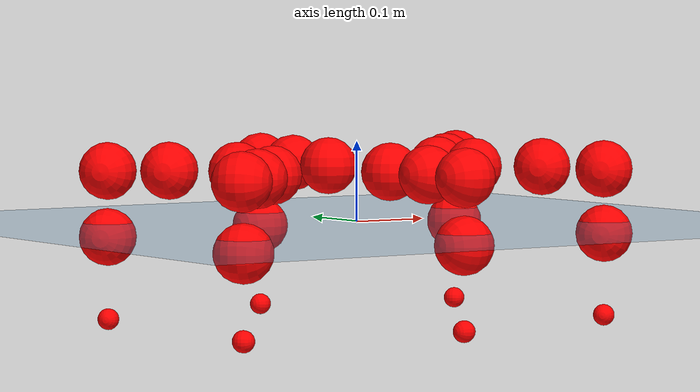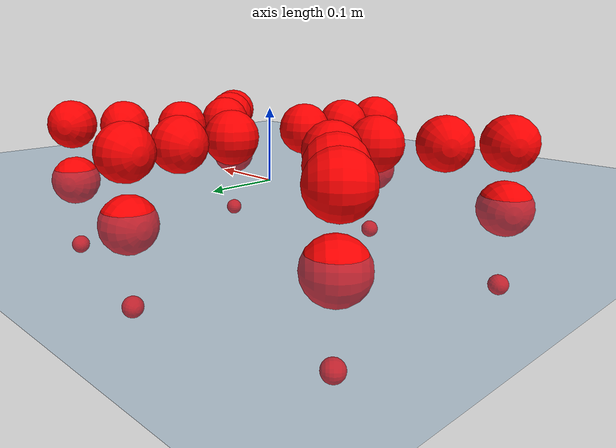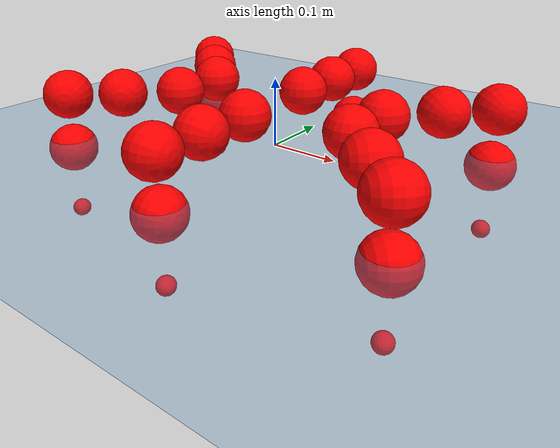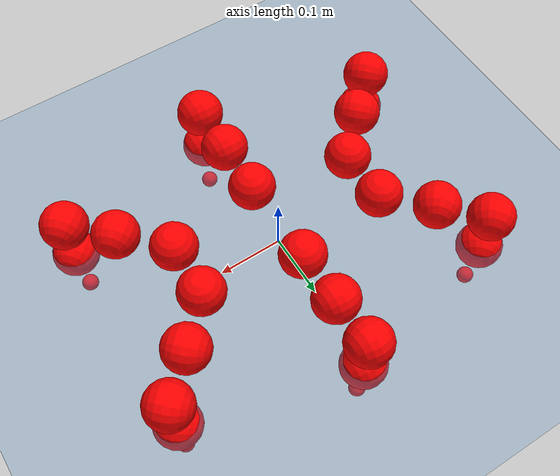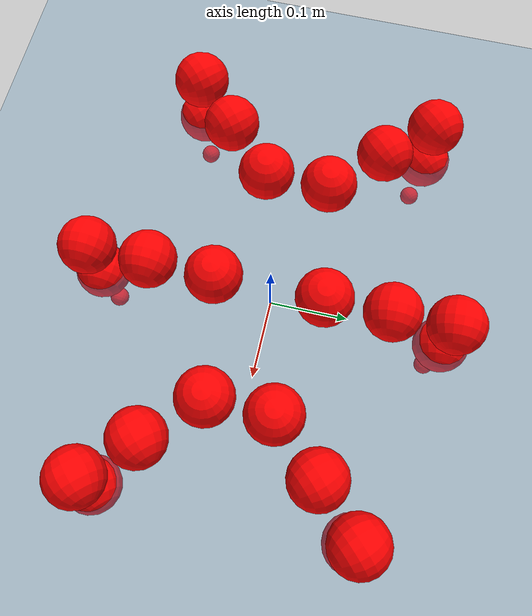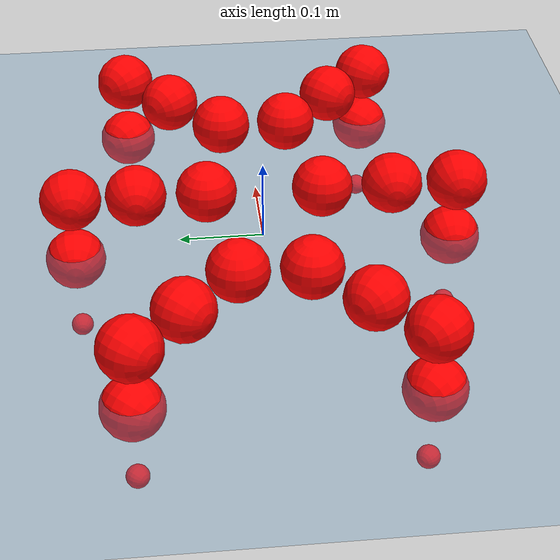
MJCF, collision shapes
<mujoco model="Golem">
  <compiler angle="radian" assetdir="assets" balanceinertia="true" inertiafromgeom="false"/>

  <option timestep="0.005" density="1.2" viscosity="2e-05"/>

  <size nkey="1"/>

  <visual>
    <quality shadowsize="8192"/>
    <map shadowclip="0.5"/>
  </visual>

  <default>
    <default class="/">
      <joint armature="0.01" damping="0.01" frictionloss="0.01"/>
      <geom contype="0" conaffinity="0" group="1" solref="-1000 -80"/>
      <site size="0.01 0.005 0.005" group="5"/>
      <general forcelimited="true" biastype="affine" gainprm="25" biasprm="0 -25 -0.5"/>
      <default class="visual">
        <geom type="mesh" group="2"/>
      </default>
      <default class="collision">
        <geom group="3"/>
      </default>
      <default class="foot">
        <geom size="0.01 0 0" condim="6" group="4" priority="1" solimp="0.015 1 0.01"/>
      </default>
      <default class="reward_collision_sphere">
        <geom group="5" rgba="1 0 0 1"/>
      </default>
    </default>
  </default>

  <asset>
    <texture type="skybox" colorspace="auto" name="//unnamed_texture_0" builtin="gradient" rgb1="0.95 0.95 0.95" rgb2="0.95 0.95 0.95" width="100" height="600"/>
    <texture type="2d" colorspace="auto" name="texplane" builtin="checker" rgb1="0.345 0.575 0.748" rgb2="0.345 0.575 0.748" markrgb="1 1 1" width="512" height="512"/>
    <material name="MatPlane" class="/" texture="texplane" texuniform="true" texrepeat="2 2" specular="0.9"/>
    <mesh name="body" class="/" file="body.stl" scale="0.001 0.001 0.001"/>
    <mesh name="coxa" class="/" file="coxa.stl" scale="0.001 0.001 0.001"/>
    <mesh name="femur" class="/" file="femur.stl" scale="0.001 0.001 0.001"/>
    <mesh name="tibia" class="/" file="tibia.stl" scale="0.001 0.001 0.001"/>
    <mesh name="tarsus" class="/" file="tarsus.stl" scale="0.001 0.001 0.001"/>
  </asset>

  <worldbody>
    <geom name="floor" class="/" size="100 100 0.125" type="plane" group="0" material="MatPlane"/>
    <light name="toplight_shadow" class="/" pos="0 0 5" dir="0.0990148 0.0990148 -0.990148" type="directional" ambient="0.04 0.04 0.04" diffuse="0.55 0.55 0.55" specular="0.12 0.12 0.12"/>
    <light name="toplight_fill" class="/" pos="0 0 5" dir="0.0990148 0.0990148 -0.990148" type="directional" castshadow="false" ambient="0.04 0.04 0.04" diffuse="0.3 0.3 0.3" specular="0.08 0.08 0.08"/>
    <body name="trunk" pos="-4.091e-05 0.000309541 -0.000608209" quat="1 8.84912e-05 -0.000410134 -0.000674654">
      <inertial pos="-0.000396304 0.000574059 -0.00342592" quat="0.999987 0.00244675 0.000281566 -0.0045639" mass="2.63038" diaginertia="0.00812801 0.0020635 0.0104854"/>
      <joint name="//unnamed_joint_0" type="free"/>
      <geom name="//unnamed_geom_1" class="/" pos="0 0 0.0646052" quat="1 0 0 0" type="mesh" rgba="0.9 0.9 0.9 1" mesh="body"/>
      <site name="imu" class="/" pos="0.129348 0.00872516 0.113449" size="0.00898244"/>
      <camera name="track" class="/" pos="0 -1.45586 0" quat="0.707107 0.707107 0 0" mode="trackcom"/>
      <camera name="ego_camera" class="/" pos="0.124455 0 0.100946" quat="-0.5 -0.5 0.5 0.5"/>
      <body name="coxa_RR" pos="-0.170592 -0.0606045 0.0654041" quat="0.382031 0.00039931 0.00099259 -0.924149">
        <inertial pos="0.00130556 -0.00102792 0.000225405" quat="0.999994 -0.00295348 0.00173996 0.000266786" mass="0.150305" diaginertia="0.00824704 0.00212437 0.0109528"/>
        <joint name="coxa_joint_RR" class="/" pos="0 0 0" axis="0.000227608 0.00834567 -0.999965" range="-3.15382 3.16006" armature="0.00873078" damping="0" frictionloss="0.00856228"/>
        <geom name="//unnamed_geom_2" class="/" type="mesh" rgba="0.2 0.2 0.2 1" mesh="coxa"/>
        <geom name="//unnamed_geom_3" class="reward_collision_sphere" size="0.0359297" pos="-0.0287204 0 0"/>
        <body name="femur_RR" pos="0.0564215 0.000640939 0.000721645" quat="0.500549 -0.500486 0.499931 0.499033">
          <inertial pos="0.000162888 0.00235904 -8.50434e-05" quat="0.999997 -5.62624e-05 -0.00223346 0.001093" mass="0.142285" diaginertia="0.007864 0.00200573 0.0102324"/>
          <joint name="femur_joint_RR" class="/" pos="0 0 0" axis="0.000228637 0.000204127 -1" range="-3.16025 3.15987" armature="0.00977236" damping="0" frictionloss="0.00902208"/>
          <geom name="//unnamed_geom_4" class="/" type="mesh" rgba="0.9 0.9 0.9 1" mesh="femur"/>
          <geom name="//unnamed_geom_5" class="reward_collision_sphere" size="0.0359297"/>
          <body name="tibia_RR" pos="-0.000792748 -0.0795189 -0.000484699" quat="6.90608e-05 1 9.42867e-05 -6.83371e-05">
            <inertial pos="0.000420301 0.0024228 -0.000385487" quat="1 -0.000358295 -8.28171e-05 -0.000109486" mass="0.142527" diaginertia="0.00788532 0.00201925 0.0102739"/>
            <joint name="tibia_joint_RR" class="/" pos="0 0 0" axis="0.0113382 0.0027703 0.999932" range="-3.09375 3.12716" armature="0.008952" damping="0.00218662" frictionloss="0.0101301"/>
            <geom name="//unnamed_geom_6" class="/" type="mesh" rgba="0.2 0.2 0.2 1" mesh="tibia"/>
            <geom name="//unnamed_geom_7" class="reward_collision_sphere" size="0.0359297"/>
            <body name="tarsus_RR" pos="0.0835584 0.00169944 -0.00239516" quat="1 -6.66431e-06 6.71661e-06 7.3489e-06">
              <inertial pos="0.0570197 0.000759633 0.00101063" quat="0.499147 0.500028 0.501424 0.499398" mass="0.141275" diaginertia="0.00780098 0.00201708 0.0105399"/>
              <joint name="tarsus_joint_RR" class="/" pos="0 0 0" axis="0.0014622 0.00504046 0.999986" range="-3.13931 3.12867" armature="0.00935975" damping="0.00404464" frictionloss="0.00902627"/>
              <geom name="//unnamed_geom_8" class="/" type="mesh" rgba="0.9 0.9 0.9 1" mesh="tarsus"/>
              <geom name="foot_1" class="foot" size="0.00837148" pos="0.107223 0 0" quat="0 -0.707107 0 0.707107"/>
              <geom name="//unnamed_geom_10" class="reward_collision_sphere" size="0.0359297"/>
              <geom name="//unnamed_geom_11" class="reward_collision_sphere" size="0.0134737" pos="0.102915 0 0"/>
              <site name="foot_1" class="foot" pos="0.107223 0 0" quat="0 -0.707107 0 0.707107" size="0.00898244"/>
            </body>
          </body>
        </body>
      </body>
      <body name="coxa_RM" pos="0.00216831 -0.0993037 0.065953" quat="0.706964 -2.64764e-05 -8.2816e-05 -0.707249">
        <inertial pos="0.000531608 0.000170855 -0.00151558" quat="0.999922 -0.0072234 -0.00953401 0.00354268" mass="0.150109" diaginertia="0.00834995 0.00216941 0.0109929"/>
        <joint name="coxa_joint_RM" class="/" pos="0 0 0" axis="0.0087555 0.00556922 -0.999946" range="-3.13696 3.14187" armature="0.00942996" damping="0.0123224" frictionloss="0.00928828"/>
        <geom name="//unnamed_geom_12" class="/" type="mesh" rgba="0.2 0.2 0.2 1" mesh="coxa"/>
        <geom name="//unnamed_geom_13" class="reward_collision_sphere" size="0.0359297" pos="-0.0287204 0 0"/>
        <body name="femur_RM" pos="0.0541014 -0.0013611 0.000385781" quat="0.500001 -0.499996 0.500002 0.5">
          <inertial pos="-0.000120949 0.000857426 -0.000456519" quat="0.999999 -0.000757558 -0.00024109 -0.00117363" mass="0.144795" diaginertia="0.00785541 0.0020397 0.0105299"/>
          <joint name="femur_joint_RM" class="/" pos="0 0 0" axis="0.000152288 -9.70732e-06 -1" range="-3.1078 3.132" armature="0.00941158" damping="0.00877964" frictionloss="0.00990748"/>
          <geom name="//unnamed_geom_14" class="/" type="mesh" rgba="0.9 0.9 0.9 1" mesh="femur"/>
          <geom name="//unnamed_geom_15" class="reward_collision_sphere" size="0.0359297"/>
          <body name="tibia_RM" pos="-6.66935e-05 -0.0778852 -0.00105646" quat="-4.50632e-05 1 -1.55379e-05 5.57539e-05">
            <inertial pos="0.000704326 0.00021944 0.00143096" quat="0.999995 -0.00214902 -0.00213059 0.000279352" mass="0.149157" diaginertia="0.00802252 0.00205213 0.0105272"/>
            <joint name="tibia_joint_RM" class="/" pos="0 0 0" axis="0.00341749 0.0092223 0.999952" range="-3.15542 3.15663" armature="0.00793816" damping="0.0112818" frictionloss="0.00999756"/>
            <geom name="//unnamed_geom_16" class="/" type="mesh" rgba="0.2 0.2 0.2 1" mesh="tibia"/>
            <geom name="//unnamed_geom_17" class="reward_collision_sphere" size="0.0359297"/>
            <body name="tarsus_RM" pos="0.0811832 -0.00227598 -0.000266953" quat="1 -7.66608e-05 0.000348847 -0.000320794">
              <inertial pos="0.0571466 0.000682254 -5.10148e-06" quat="0.500031 0.500277 0.500023 0.499669" mass="0.151476" diaginertia="0.00821004 0.00209973 0.0107498"/>
              <joint name="tarsus_joint_RM" class="/" pos="0 0 0" axis="-0.00380011 -0.00194118 0.999991" range="-3.1584 3.15157" armature="0.00922859" damping="0.00614185" frictionloss="0.00860283"/>
              <geom name="//unnamed_geom_18" class="/" type="mesh" rgba="0.9 0.9 0.9 1" mesh="tarsus"/>
              <geom name="foot_2" class="foot" size="0.00882929" pos="0.107223 0 0" quat="0 -0.707107 0 0.707107"/>
              <geom name="//unnamed_geom_20" class="reward_collision_sphere" size="0.0359297"/>
              <geom name="//unnamed_geom_21" class="reward_collision_sphere" size="0.0134737" pos="0.102915 0 0"/>
              <site name="foot_2" class="foot" pos="0.107223 0 0" quat="0 -0.707107 0 0.707107" size="0.00898244"/>
            </body>
          </body>
        </body>
      </body>
      <body name="coxa_RF" pos="0.169522 -0.0629003 0.0667411" quat="0.923712 0.000196392 -0.000173105 -0.383088">
        <inertial pos="-0.00219688 0.000621089 -0.00114747" quat="0.999997 0.00054486 0.000391347 0.00215863" mass="0.145004" diaginertia="0.00832024 0.00211223 0.0108365"/>
        <joint name="coxa_joint_RF" class="/" pos="0 0 0" axis="0.00942293 -0.000552354 -0.999955" range="-3.12901 3.12769" armature="0.00913536" damping="0.0211706" frictionloss="0.00993095"/>
        <geom name="//unnamed_geom_22" class="/" type="mesh" rgba="0.2 0.2 0.2 1" mesh="coxa"/>
        <geom name="//unnamed_geom_23" class="reward_collision_sphere" size="0.0359297" pos="-0.0287204 0 0"/>
        <body name="femur_RF" pos="0.0583255 1.68963e-05 0.000706859" quat="0.500818 -0.499817 0.499635 0.499728">
          <inertial pos="0.00012469 -0.000206489 0.00103865" quat="1 6.36008e-05 0.000192486 0.000202302" mass="0.146302" diaginertia="0.00798459 0.00202728 0.0104284"/>
          <joint name="femur_joint_RF" class="/" pos="0 0 0" axis="-0.00410631 -0.00267795 -0.999988" range="-3.15083 3.1411" armature="0.00933297" damping="0.0110164" frictionloss="0.00906576"/>
          <geom name="//unnamed_geom_24" class="/" type="mesh" rgba="0.9 0.9 0.9 1" mesh="femur"/>
          <geom name="//unnamed_geom_25" class="reward_collision_sphere" size="0.0359297"/>
          <body name="tibia_RF" pos="0.00230226 -0.0780539 0.000933901" quat="-0.000195394 1 -8.80055e-06 0.000458281">
            <inertial pos="-7.83687e-05 -0.00197306 -0.00163066" quat="0.999947 -0.00995912 -0.00221225 -0.00150355" mass="0.139168" diaginertia="0.00788024 0.00199612 0.0104581"/>
            <joint name="tibia_joint_RF" class="/" pos="0 0 0" axis="-0.000892242 -0.00923614 0.999957" stiffness="0.00265504" range="-3.1323 3.14621" armature="0.00919918" damping="0" frictionloss="0.00886095"/>
            <geom name="//unnamed_geom_26" class="/" type="mesh" rgba="0.2 0.2 0.2 1" mesh="tibia"/>
            <geom name="//unnamed_geom_27" class="reward_collision_sphere" size="0.0359297"/>
            <body name="tarsus_RF" pos="0.0810446 0.000247792 -0.00136692" quat="1 3.51783e-05 3.18314e-05 3.62421e-05">
              <inertial pos="0.0556649 -0.00039708 -0.000416832" quat="0.498884 0.502859 0.50164 0.496593" mass="0.146801" diaginertia="0.00814303 0.00201151 0.0105231"/>
              <joint name="tarsus_joint_RF" class="/" pos="0 0 0" axis="-0.00690051 0.013691 0.999882" range="-3.13868 3.15469" armature="0.0093181" damping="0.00672871" frictionloss="0.00901551"/>
              <geom name="//unnamed_geom_28" class="/" type="mesh" rgba="0.9 0.9 0.9 1" mesh="tarsus"/>
              <geom name="foot_3" class="foot" size="0.008713" pos="0.107223 0 0" quat="0 -0.707107 0 0.707107"/>
              <geom name="//unnamed_geom_30" class="reward_collision_sphere" size="0.0359297"/>
              <geom name="//unnamed_geom_31" class="reward_collision_sphere" size="0.0134737" pos="0.102915 0 0"/>
              <site name="foot_3" class="foot" pos="0.107223 0 0" quat="0 -0.707107 0 0.707107" size="0.00898244"/>
            </body>
          </body>
        </body>
      </body>
      <body name="coxa_LR" pos="-0.170037 0.0614477 0.0666233" quat="0.38177 0.000263147 -0.000114171 0.924257">
        <inertial pos="0.00047158 0.0014057 -0.00155316" quat="0.999995 -0.000905987 0.00173005 -0.00260202" mass="0.143013" diaginertia="0.00809271 0.00201069 0.0103968"/>
        <joint name="coxa_joint_LR" class="/" pos="0 0 0" axis="0.00483818 -0.0101801 -0.999936" range="-3.12771 3.18222" armature="0.00908512" damping="0.0101278" frictionloss="0.00945936"/>
        <geom name="//unnamed_geom_32" class="/" type="mesh" rgba="0.2 0.2 0.2 1" mesh="coxa"/>
        <geom name="//unnamed_geom_33" class="reward_collision_sphere" size="0.0359297" pos="-0.0287204 0 0"/>
        <body name="femur_LR" pos="0.057955 -0.000934195 -0.000563326" quat="0.499856 -0.499829 0.500304 0.500011">
          <inertial pos="0.000238487 0.000953878 -0.00110182" quat="0.999931 0.000523595 0.00963557 -0.00675193" mass="0.147528" diaginertia="0.00826202 0.0020936 0.0105148"/>
          <joint name="femur_joint_LR" class="/" pos="0 0 0" axis="-0.0113352 0.00790215 0.999905" range="-3.13152 3.12204" armature="0.0100937" damping="0.0058008" frictionloss="0.00898072"/>
          <geom name="//unnamed_geom_34" class="/" type="mesh" rgba="0.9 0.9 0.9 1" mesh="femur"/>
          <geom name="//unnamed_geom_35" class="reward_collision_sphere" size="0.0359297"/>
          <body name="tibia_LR" pos="0.00122023 -0.0794617 -0.00233468" quat="-0.000376271 1 0.000260233 0.000116426">
            <inertial pos="3.62523e-05 -0.000883993 0.00156246" quat="0.99999 0.00305947 -0.00272636 0.00194302" mass="0.147174" diaginertia="0.00789697 0.00200899 0.010473"/>
            <joint name="tibia_joint_LR" class="/" pos="0 0 0" axis="0.000191837 0.00231924 -0.999997" range="-3.09298 3.16176" armature="0.0082578" damping="0.00658301" frictionloss="0.00894797"/>
            <geom name="//unnamed_geom_36" class="/" type="mesh" rgba="0.2 0.2 0.2 1" mesh="tibia"/>
            <geom name="//unnamed_geom_37" class="reward_collision_sphere" size="0.0359297"/>
            <body name="tarsus_LR" pos="0.0825291 0.000883331 0.00150301" quat="1 -4.55752e-06 -2.22742e-05 3.01237e-05">
              <inertial pos="0.0584813 -0.00159185 -0.000451384" quat="0.499922 0.50036 0.49969 0.500028" mass="0.142767" diaginertia="0.00814393 0.00213586 0.0106024"/>
              <joint name="tarsus_joint_LR" class="/" pos="0 0 0" axis="0.00302377 -0.00317018 -0.99999" range="-3.1237 3.14658" armature="0.0089519" damping="0.00155634" frictionloss="0.00886629"/>
              <geom name="//unnamed_geom_38" class="/" type="mesh" rgba="0.9 0.9 0.9 1" mesh="tarsus"/>
              <geom name="foot_4" class="foot" size="0.00906015" pos="0.107223 0 0" quat="0.707107 0 -0.707107 0"/>
              <geom name="//unnamed_geom_40" class="reward_collision_sphere" size="0.0359297"/>
              <geom name="//unnamed_geom_41" class="reward_collision_sphere" size="0.0134737" pos="0.102915 0 0"/>
              <site name="foot_4" class="foot" pos="0.107223 0 0" quat="0.707107 0 -0.707107 0" size="0.00898244"/>
            </body>
          </body>
        </body>
      </body>
      <body name="coxa_LM" pos="0.00154524 0.0951306 0.067435" quat="0.707195 -0.000232296 -0.000747245 0.707018">
        <inertial pos="0.000222969 9.76715e-05 -0.00166778" quat="0.999997 -0.000619982 0.00121278 -0.00208643" mass="0.144569" diaginertia="0.00788778 0.00202598 0.0103325"/>
        <joint name="coxa_joint_LM" class="/" pos="0 0 0" axis="-0.00103752 0.00100684 -0.999999" range="-3.12859 3.13114" armature="0.0085195" damping="0.00294657" frictionloss="0.0089284"/>
        <geom name="//unnamed_geom_42" class="/" type="mesh" rgba="0.2 0.2 0.2 1" mesh="coxa"/>
        <geom name="//unnamed_geom_43" class="reward_collision_sphere" size="0.0359297" pos="-0.0287204 0 0"/>
        <body name="femur_LM" pos="0.0537637 0.00040244 0.000140945" quat="0.499897 -0.500112 0.499973 0.500018">
          <inertial pos="-0.00113692 -0.000351091 -0.00262645" quat="0.999981 -0.000447417 -0.00171006 0.00593833" mass="0.145141" diaginertia="0.00809742 0.00205918 0.010589"/>
          <joint name="femur_joint_LM" class="/" pos="0 0 0" axis="0.000466661 0.00207454 0.999998" range="-3.15873 3.08952" armature="0.00883949" damping="0" frictionloss="0.00819263"/>
          <geom name="//unnamed_geom_44" class="/" type="mesh" rgba="0.9 0.9 0.9 1" mesh="femur"/>
          <geom name="//unnamed_geom_45" class="reward_collision_sphere" size="0.0359297"/>
          <body name="tibia_LM" pos="0.000338473 -0.0759112 0.0010234" quat="-0.000154305 1 -5.69886e-05 0.000163942">
            <inertial pos="-0.000624992 -0.000449851 9.7433e-05" quat="0.999998 -0.00113365 0.000781623 -0.00117148" mass="0.140374" diaginertia="0.00779403 0.00198325 0.0101564"/>
            <joint name="tibia_joint_LM" class="/" pos="0 0 0" axis="0.00973222 -0.00144073 -0.999952" range="-3.10756 3.14354" armature="0.010164" damping="0" frictionloss="0.00969482"/>
            <geom name="//unnamed_geom_46" class="/" type="mesh" rgba="0.2 0.2 0.2 1" mesh="tibia"/>
            <geom name="//unnamed_geom_47" class="reward_collision_sphere" size="0.0359297"/>
            <body name="tarsus_LM" pos="0.0852547 0.000104682 -0.000876961" quat="1 -0.000190006 -4.19592e-06 -6.80029e-06">
              <inertial pos="0.0581442 -0.00177372 -0.000309619" quat="0.500888 0.499422 0.49984 0.499848" mass="0.140365" diaginertia="0.00788151 0.00191506 0.01027"/>
              <joint name="tarsus_joint_LM" class="/" pos="0 0 0" axis="-0.00127194 -0.000346646 -0.999999" stiffness="0.00990761" range="-3.1362 3.13579" armature="0.00916103" damping="0.0210937" frictionloss="0.0100923"/>
              <geom name="//unnamed_geom_48" class="/" type="mesh" rgba="0.9 0.9 0.9 1" mesh="tarsus"/>
              <geom name="foot_5" class="foot" size="0.00918867" pos="0.107223 0 0" quat="0.707107 0 -0.707107 0"/>
              <geom name="//unnamed_geom_50" class="reward_collision_sphere" size="0.0359297"/>
              <geom name="//unnamed_geom_51" class="reward_collision_sphere" size="0.0134737" pos="0.102915 0 0"/>
              <site name="foot_5" class="foot" pos="0.107223 0 0" quat="0.707107 0 -0.707107 0" size="0.00898244"/>
            </body>
          </body>
        </body>
      </body>
      <body name="coxa_LF" pos="0.171007 0.0592114 0.0656655" quat="0.923805 0.000249492 0.000198382 0.382864">
        <inertial pos="-0.00205204 -0.00246218 -0.000722401" quat="0.999986 -0.00435673 0.00247227 -0.00145194" mass="0.142333" diaginertia="0.00789588 0.00194207 0.0104597"/>
        <joint name="coxa_joint_LF" class="/" pos="0 0 0" axis="0.00595077 0.00529674 -0.999968" range="-3.14109 3.1395" armature="0.00846468" damping="0.0016022" frictionloss="0.00840331"/>
        <geom name="//unnamed_geom_52" class="/" type="mesh" rgba="0.2 0.2 0.2 1" mesh="coxa"/>
        <geom name="//unnamed_geom_53" class="reward_collision_sphere" size="0.0359297" pos="-0.0287204 0 0"/>
        <body name="femur_LF" pos="0.0568213 0.00259833 0.000651044" quat="0.499668 -0.50033 0.500026 0.499975">
          <inertial pos="0.000175554 -0.000327457 -0.00106645" quat="1 -0.0004978 -0.000528213 -0.000253788" mass="0.13953" diaginertia="0.0076091 0.00199636 0.0102214"/>
          <joint name="femur_joint_LF" class="/" pos="0 0 0" axis="0.0052114 -0.0110118 0.999926" range="-3.13146 3.16825" armature="0.00870622" damping="0.00772893" frictionloss="0.00899021"/>
          <geom name="//unnamed_geom_54" class="/" type="mesh" rgba="0.9 0.9 0.9 1" mesh="femur"/>
          <geom name="//unnamed_geom_55" class="reward_collision_sphere" size="0.0359297"/>
          <body name="tibia_LF" pos="-0.000440281 -0.0795502 -0.000551546" quat="1.64418e-06 1 4.58049e-07 -3.99738e-06">
            <inertial pos="0.00033104 0.00230682 0.000191995" quat="0.999996 -0.00227578 -0.000761954 -0.00129279" mass="0.147468" diaginertia="0.00804813 0.00205903 0.0105678"/>
            <joint name="tibia_joint_LF" class="/" pos="0 0 0" axis="-0.00342236 -0.000566142 -0.999994" range="-3.12859 3.1098" armature="0.00943197" damping="0.00201074" frictionloss="0.00852559"/>
            <geom name="//unnamed_geom_56" class="/" type="mesh" rgba="0.2 0.2 0.2 1" mesh="tibia"/>
            <geom name="//unnamed_geom_57" class="reward_collision_sphere" size="0.0359297"/>
            <body name="tarsus_LF" pos="0.0851247 -0.000535306 -0.00233732" quat="1 3.54492e-05 6.38332e-05 1.53887e-05">
              <inertial pos="0.056213 -0.000711161 0.00107093" quat="0.49169 0.498492 0.500014 0.50964" mass="0.145961" diaginertia="0.00807497 0.00203272 0.0104135"/>
              <joint name="tarsus_joint_LF" class="/" pos="0 0 0" axis="-0.000543061 0.0115106 -0.999934" stiffness="0.0295532" range="-3.14793 3.1179" armature="0.00895761" damping="0.031196" frictionloss="0.00920979"/>
              <geom name="//unnamed_geom_58" class="/" type="mesh" rgba="0.9 0.9 0.9 1" mesh="tarsus"/>
              <geom name="foot_6" class="foot" size="0.00867402" pos="0.107223 0 0" quat="0.707107 0 -0.707107 0"/>
              <geom name="//unnamed_geom_60" class="reward_collision_sphere" size="0.0359297"/>
              <geom name="//unnamed_geom_61" class="reward_collision_sphere" size="0.0134737" pos="0.102915 0 0"/>
              <site name="foot_6" class="foot" pos="0.107223 0 0" quat="0.707107 0 -0.707107 0" size="0.00898244"/>
            </body>
          </body>
        </body>
      </body>
    </body>
  </worldbody>

  <contact>
    <pair class="/" geom1="floor" geom2="foot_1" name="//unnamed_contact_0"/>
    <pair class="/" geom1="floor" geom2="foot_2" name="//unnamed_contact_1"/>
    <pair class="/" geom1="floor" geom2="foot_3" name="//unnamed_contact_2"/>
    <pair class="/" geom1="floor" geom2="foot_4" name="//unnamed_contact_3"/>
    <pair class="/" geom1="floor" geom2="foot_5" name="//unnamed_contact_4"/>
    <pair class="/" geom1="floor" geom2="foot_6" name="//unnamed_contact_5"/>
  </contact>

  <actuator>
    <general name="coxa_joint_RR" class="/" joint="coxa_joint_RR" forcerange="-6.56453 6.56453" gainprm="21.8335" biasprm="0 -21.8335 -0.454134"/>
    <general name="femur_joint_RR" class="/" joint="femur_joint_RR" forcerange="-6.30948 6.30948" gainprm="21.8335" biasprm="0 -21.8335 -0.454134"/>
    <general name="tibia_joint_RR" class="/" joint="tibia_joint_RR" forcerange="-6.59159 6.59159" gainprm="21.8335" biasprm="0 -21.8335 -0.454134"/>
    <general name="tarsus_joint_RR" class="/" joint="tarsus_joint_RR" forcerange="-6.94909 6.94909" gainprm="21.8335" biasprm="0 -21.8335 -0.454134"/>
    <general name="coxa_joint_RM" class="/" joint="coxa_joint_RM" forcerange="-6.76901 6.76901" gainprm="21.8335" biasprm="0 -21.8335 -0.454134"/>
    <general name="femur_joint_RM" class="/" joint="femur_joint_RM" forcerange="-6.95949 6.95949" gainprm="21.8335" biasprm="0 -21.8335 -0.454134"/>
    <general name="tibia_joint_RM" class="/" joint="tibia_joint_RM" forcerange="-6.3009 6.3009" gainprm="21.8335" biasprm="0 -21.8335 -0.454134"/>
    <general name="tarsus_joint_RM" class="/" joint="tarsus_joint_RM" forcerange="-6.38122 6.38122" gainprm="21.8335" biasprm="0 -21.8335 -0.454134"/>
    <general name="coxa_joint_RF" class="/" joint="coxa_joint_RF" forcerange="-6.17072 6.17072" gainprm="21.8335" biasprm="0 -21.8335 -0.454134"/>
    <general name="femur_joint_RF" class="/" joint="femur_joint_RF" forcerange="-6.55053 6.55053" gainprm="21.8335" biasprm="0 -21.8335 -0.454134"/>
    <general name="tibia_joint_RF" class="/" joint="tibia_joint_RF" forcerange="-6.31556 6.31556" gainprm="21.8335" biasprm="0 -21.8335 -0.454134"/>
    <general name="tarsus_joint_RF" class="/" joint="tarsus_joint_RF" forcerange="-6.48631 6.48631" gainprm="21.8335" biasprm="0 -21.8335 -0.454134"/>
    <general name="coxa_joint_LR" class="/" joint="coxa_joint_LR" forcerange="-6.47877 6.47877" gainprm="21.8335" biasprm="0 -21.8335 -0.454134"/>
    <general name="femur_joint_LR" class="/" joint="femur_joint_LR" forcerange="-6.59646 6.59646" gainprm="21.8335" biasprm="0 -21.8335 -0.454134"/>
    <general name="tibia_joint_LR" class="/" joint="tibia_joint_LR" forcerange="-6.45822 6.45822" gainprm="21.8335" biasprm="0 -21.8335 -0.454134"/>
    <general name="tarsus_joint_LR" class="/" joint="tarsus_joint_LR" forcerange="-6.67315 6.67315" gainprm="21.8335" biasprm="0 -21.8335 -0.454134"/>
    <general name="coxa_joint_LM" class="/" joint="coxa_joint_LM" forcerange="-6.73816 6.73816" gainprm="21.8335" biasprm="0 -21.8335 -0.454134"/>
    <general name="femur_joint_LM" class="/" joint="femur_joint_LM" forcerange="-6.69044 6.69044" gainprm="21.8335" biasprm="0 -21.8335 -0.454134"/>
    <general name="tibia_joint_LM" class="/" joint="tibia_joint_LM" forcerange="-6.58645 6.58645" gainprm="21.8335" biasprm="0 -21.8335 -0.454134"/>
    <general name="tarsus_joint_LM" class="/" joint="tarsus_joint_LM" forcerange="-6.35966 6.35966" gainprm="21.8335" biasprm="0 -21.8335 -0.454134"/>
    <general name="coxa_joint_LF" class="/" joint="coxa_joint_LF" forcerange="-6.59671 6.59671" gainprm="21.8335" biasprm="0 -21.8335 -0.454134"/>
    <general name="femur_joint_LF" class="/" joint="femur_joint_LF" forcerange="-6.57996 6.57996" gainprm="21.8335" biasprm="0 -21.8335 -0.454134"/>
    <general name="tibia_joint_LF" class="/" joint="tibia_joint_LF" forcerange="-6.49964 6.49964" gainprm="21.8335" biasprm="0 -21.8335 -0.454134"/>
    <general name="tarsus_joint_LF" class="/" joint="tarsus_joint_LF" forcerange="-6.59991 6.59991" gainprm="21.8335" biasprm="0 -21.8335 -0.454134"/>
  </actuator>

  <sensor>
    <gyro site="imu" name="imu_angular_velocity"/>
    <velocimeter site="imu" name="imu_linear_velocity"/>
    <framelinvel objtype="site" objname="foot_1" name="foot_1_global_linear_velocity"/>
    <framelinvel objtype="site" objname="foot_2" name="foot_2_global_linear_velocity"/>
    <framelinvel objtype="site" objname="foot_3" name="foot_3_global_linear_velocity"/>
    <framelinvel objtype="site" objname="foot_4" name="foot_4_global_linear_velocity"/>
    <framelinvel objtype="site" objname="foot_5" name="foot_5_global_linear_velocity"/>
    <framelinvel objtype="site" objname="foot_6" name="foot_6_global_linear_velocity"/>
  </sensor>

  <keyframe>
    <key name="home" qpos="0 0 0.1457 1 0 0 0 0 0 0 0 0 0 0 0 0 0 0 0 0 0 0 0 0 0 0 0 0 0 0 0"/>
  </keyframe>
</mujoco>
